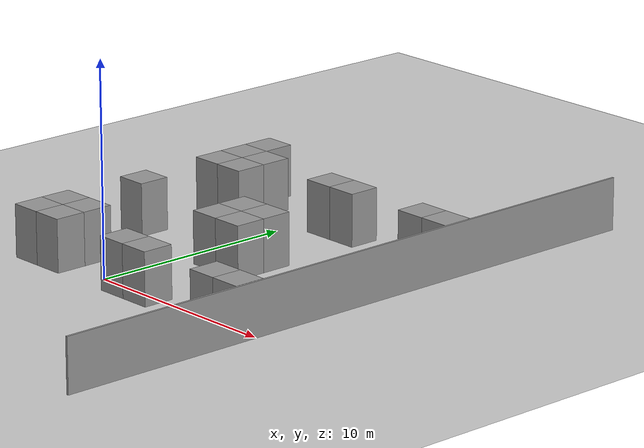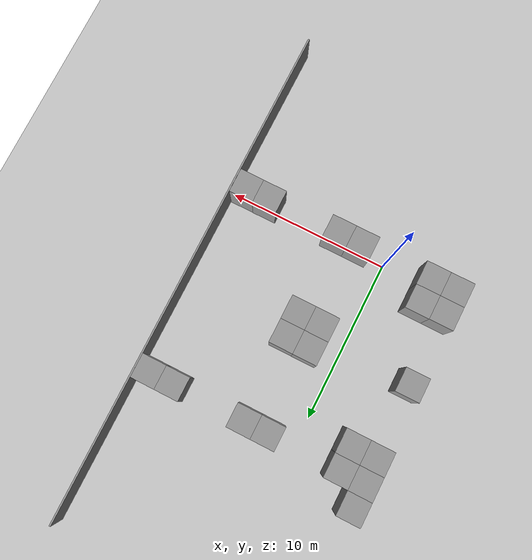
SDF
<sdf version="1.6">
 <world name="default">
  <model name="ground_plane">
   <static>1</static>
   <link name="link">
    <collision name="collision">
     <geometry><plane><normal>0 0 1</normal><size>100 100</size></plane></geometry>
     <surface><friction><ode><mu>100</mu><mu2>50</mu2></ode></friction></surface>
    </collision>
    <visual name="visual">
     <cast_shadows>0</cast_shadows>
     <geometry><plane><normal>0 0 1</normal><size>100 100</size></plane></geometry>
     <material>
      <script><uri>file://media/materials/scripts/gazebo.material</uri><name>Gazebo/Grey</name></script>
     </material>
    </visual>
   </link>
  </model>
  <model name="wall_1.5_1.5_11">
   <link name="Wall_2">
    <inertial>
     <mass>10</mass>
     <inertia><ixx>1</ixx><ixy>0</ixy><ixz>0</ixz><iyy>1</iyy><iyz>0</iyz><izz>1</izz></inertia>
    </inertial>
    <visual name="Wall_2_Visual">
     <pose>0 0 1.25 0 -0 0</pose>
     <geometry><box><size>1.5 1.5 2.5</size></box></geometry>
     <material>
      <script><uri>file://media/materials/scripts/gazebo.material</uri><name>Gazebo/Grey</name></script>
      <ambient>1 1 1 1</ambient>
      <diffuse>0.7 0.7 0.7 1</diffuse>
      <specular>0.01 0.01 0.01 1</specular>
      <emissive>0 0 0 1</emissive>
      <shader type="vertex"><normal_map>__default__</normal_map></shader>
     </material>
    </visual>
    <collision name="Wall_2_Collision">
     <pose>0 0 1.25 0 -0 0</pose>
     <geometry><box><size>1.5 1.5 2.5</size></box></geometry>
     <surface>
      <friction>
       <ode><mu>1</mu><mu2>1</mu2><fdir1>0 0 0</fdir1><slip1>0</slip1><slip2>0</slip2></ode>
       <torsional>
        <coefficient>1</coefficient>
        <patch_radius>0</patch_radius>
        <surface_radius>0</surface_radius>
        <use_patch_radius>1</use_patch_radius>
        <ode><slip>0</slip></ode>
       </torsional>
      </friction>
      <bounce><restitution_coefficient>0</restitution_coefficient><threshold>1e+06</threshold></bounce>
      <contact>
       <collide_without_contact>0</collide_without_contact>
       <collide_without_contact_bitmask>1</collide_without_contact_bitmask>
       <collide_bitmask>1</collide_bitmask>
       <ode>
        <soft_cfm>0</soft_cfm>
        <soft_erp>0.2</soft_erp>
        <kp>1e+13</kp>
        <kd>1</kd>
        <max_vel>0.01</max_vel>
        <min_depth>0</min_depth>
       </ode>
       <bullet>
        <split_impulse>1</split_impulse>
        <split_impulse_penetration_threshold>-0.01</split_impulse_penetration_threshold>
        <soft_cfm>0</soft_cfm>
        <soft_erp>0.2</soft_erp>
        <kp>1e+13</kp>
        <kd>1</kd>
       </bullet>
      </contact>
     </surface>
    </collision>
   </link>
   <static>1</static>
   <pose>9.24277 -0.255252 0 0 -0 0</pose>
  </model>
  <model name="wall_1.5_1.5_12">
   <link name="Wall_2">
    <inertial>
     <mass>10</mass>
     <inertia><ixx>1</ixx><ixy>0</ixy><ixz>0</ixz><iyy>1</iyy><iyz>0</iyz><izz>1</izz></inertia>
    </inertial>
    <visual name="Wall_2_Visual">
     <pose>0 0 1.25 0 -0 0</pose>
     <geometry><box><size>1.5 1.5 2.5</size></box></geometry>
     <material>
      <script><uri>file://media/materials/scripts/gazebo.material</uri><name>Gazebo/Grey</name></script>
      <ambient>1 1 1 1</ambient>
      <diffuse>0.7 0.7 0.7 1</diffuse>
      <specular>0.01 0.01 0.01 1</specular>
      <emissive>0 0 0 1</emissive>
      <shader type="vertex"><normal_map>__default__</normal_map></shader>
     </material>
    </visual>
    <collision name="Wall_2_Collision">
     <pose>0 0 1.25 0 -0 0</pose>
     <geometry><box><size>1.5 1.5 2.5</size></box></geometry>
     <surface>
      <friction>
       <ode><mu>1</mu><mu2>1</mu2><fdir1>0 0 0</fdir1><slip1>0</slip1><slip2>0</slip2></ode>
       <torsional>
        <coefficient>1</coefficient>
        <patch_radius>0</patch_radius>
        <surface_radius>0</surface_radius>
        <use_patch_radius>1</use_patch_radius>
        <ode><slip>0</slip></ode>
       </torsional>
      </friction>
      <bounce><restitution_coefficient>0</restitution_coefficient><threshold>1e+06</threshold></bounce>
      <contact>
       <collide_without_contact>0</collide_without_contact>
       <collide_without_contact_bitmask>1</collide_without_contact_bitmask>
       <collide_bitmask>1</collide_bitmask>
       <ode>
        <soft_cfm>0</soft_cfm>
        <soft_erp>0.2</soft_erp>
        <kp>1e+13</kp>
        <kd>1</kd>
        <max_vel>0.01</max_vel>
        <min_depth>0</min_depth>
       </ode>
       <bullet>
        <split_impulse>1</split_impulse>
        <split_impulse_penetration_threshold>-0.01</split_impulse_penetration_threshold>
        <soft_cfm>0</soft_cfm>
        <soft_erp>0.2</soft_erp>
        <kp>1e+13</kp>
        <kd>1</kd>
       </bullet>
      </contact>
     </surface>
    </collision>
   </link>
   <static>1</static>
   <pose>7.75582 -0.251223 0 0 -0 0</pose>
  </model>
  <model name="wall_1.5_1.5_13">
   <link name="Wall_2">
    <inertial>
     <mass>10</mass>
     <inertia><ixx>1</ixx><ixy>0</ixy><ixz>0</ixz><iyy>1</iyy><iyz>0</iyz><izz>1</izz></inertia>
    </inertial>
    <visual name="Wall_2_Visual">
     <pose>0 0 1.25 0 -0 0</pose>
     <geometry><box><size>1.5 1.5 2.5</size></box></geometry>
     <material>
      <script><uri>file://media/materials/scripts/gazebo.material</uri><name>Gazebo/Grey</name></script>
      <ambient>1 1 1 1</ambient>
      <diffuse>0.7 0.7 0.7 1</diffuse>
      <specular>0.01 0.01 0.01 1</specular>
      <emissive>0 0 0 1</emissive>
      <shader type="vertex"><normal_map>__default__</normal_map></shader>
     </material>
    </visual>
    <collision name="Wall_2_Collision">
     <pose>0 0 1.25 0 -0 0</pose>
     <geometry><box><size>1.5 1.5 2.5</size></box></geometry>
     <surface>
      <friction>
       <ode><mu>1</mu><mu2>1</mu2><fdir1>0 0 0</fdir1><slip1>0</slip1><slip2>0</slip2></ode>
       <torsional>
        <coefficient>1</coefficient>
        <patch_radius>0</patch_radius>
        <surface_radius>0</surface_radius>
        <use_patch_radius>1</use_patch_radius>
        <ode><slip>0</slip></ode>
       </torsional>
      </friction>
      <bounce><restitution_coefficient>0</restitution_coefficient><threshold>1e+06</threshold></bounce>
      <contact>
       <collide_without_contact>0</collide_without_contact>
       <collide_without_contact_bitmask>1</collide_without_contact_bitmask>
       <collide_bitmask>1</collide_bitmask>
       <ode>
        <soft_cfm>0</soft_cfm>
        <soft_erp>0.2</soft_erp>
        <kp>1e+13</kp>
        <kd>1</kd>
        <max_vel>0.01</max_vel>
        <min_depth>0</min_depth>
       </ode>
       <bullet>
        <split_impulse>1</split_impulse>
        <split_impulse_penetration_threshold>-0.01</split_impulse_penetration_threshold>
        <soft_cfm>0</soft_cfm>
        <soft_erp>0.2</soft_erp>
        <kp>1e+13</kp>
        <kd>1</kd>
       </bullet>
      </contact>
     </surface>
    </collision>
   </link>
   <static>1</static>
   <pose>9.25 11.75 0 0 -0 0</pose>
  </model>
  <model name="wall_1.5_1.5_16">
   <link name="Wall_2">
    <inertial>
     <mass>10</mass>
     <inertia><ixx>1</ixx><ixy>0</ixy><ixz>0</ixz><iyy>1</iyy><iyz>0</iyz><izz>1</izz></inertia>
    </inertial>
    <visual name="Wall_2_Visual">
     <pose>0 0 1.25 0 -0 0</pose>
     <geometry><box><size>1.5 1.5 2.5</size></box></geometry>
     <material>
      <script><uri>file://media/materials/scripts/gazebo.material</uri><name>Gazebo/Grey</name></script>
      <ambient>1 1 1 1</ambient>
      <diffuse>0.7 0.7 0.7 1</diffuse>
      <specular>0.01 0.01 0.01 1</specular>
      <emissive>0 0 0 1</emissive>
      <shader type="vertex"><normal_map>__default__</normal_map></shader>
     </material>
    </visual>
    <collision name="Wall_2_Collision">
     <pose>0 0 1.25 0 -0 0</pose>
     <geometry><box><size>1.5 1.5 2.5</size></box></geometry>
     <surface>
      <friction>
       <ode><mu>1</mu><mu2>1</mu2><fdir1>0 0 0</fdir1><slip1>0</slip1><slip2>0</slip2></ode>
       <torsional>
        <coefficient>1</coefficient>
        <patch_radius>0</patch_radius>
        <surface_radius>0</surface_radius>
        <use_patch_radius>1</use_patch_radius>
        <ode><slip>0</slip></ode>
       </torsional>
      </friction>
      <bounce><restitution_coefficient>0</restitution_coefficient><threshold>1e+06</threshold></bounce>
      <contact>
       <collide_without_contact>0</collide_without_contact>
       <collide_without_contact_bitmask>1</collide_without_contact_bitmask>
       <collide_bitmask>1</collide_bitmask>
       <ode>
        <soft_cfm>0</soft_cfm>
        <soft_erp>0.2</soft_erp>
        <kp>1e+13</kp>
        <kd>1</kd>
        <max_vel>0.01</max_vel>
        <min_depth>0</min_depth>
       </ode>
       <bullet>
        <split_impulse>1</split_impulse>
        <split_impulse_penetration_threshold>-0.01</split_impulse_penetration_threshold>
        <soft_cfm>0</soft_cfm>
        <soft_erp>0.2</soft_erp>
        <kp>1e+13</kp>
        <kd>1</kd>
       </bullet>
      </contact>
     </surface>
    </collision>
   </link>
   <static>1</static>
   <pose>7.75 11.75 0 0 -0 0</pose>
  </model>
  <model name="wall_1.5_1.5_23">
   <link name="Wall_2">
    <inertial>
     <mass>10</mass>
     <inertia><ixx>1</ixx><ixy>0</ixy><ixz>0</ixz><iyy>1</iyy><iyz>0</iyz><izz>1</izz></inertia>
    </inertial>
    <visual name="Wall_2_Visual">
     <pose>0 0 1.25 0 -0 0</pose>
     <geometry><box><size>1.5 1.5 2.5</size></box></geometry>
     <material>
      <script><uri>file://media/materials/scripts/gazebo.material</uri><name>Gazebo/Grey</name></script>
      <ambient>1 1 1 1</ambient>
      <diffuse>0.7 0.7 0.7 1</diffuse>
      <specular>0.01 0.01 0.01 1</specular>
      <emissive>0 0 0 1</emissive>
      <shader type="vertex"><normal_map>__default__</normal_map></shader>
     </material>
    </visual>
    <collision name="Wall_2_Collision">
     <pose>0 0 1.25 0 -0 0</pose>
     <geometry><box><size>1.5 1.5 2.5</size></box></geometry>
     <surface>
      <friction>
       <ode><mu>1</mu><mu2>1</mu2><fdir1>0 0 0</fdir1><slip1>0</slip1><slip2>0</slip2></ode>
       <torsional>
        <coefficient>1</coefficient>
        <patch_radius>0</patch_radius>
        <surface_radius>0</surface_radius>
        <use_patch_radius>1</use_patch_radius>
        <ode><slip>0</slip></ode>
       </torsional>
      </friction>
      <bounce><restitution_coefficient>0</restitution_coefficient><threshold>1e+06</threshold></bounce>
      <contact>
       <collide_without_contact>0</collide_without_contact>
       <collide_without_contact_bitmask>1</collide_without_contact_bitmask>
       <collide_bitmask>1</collide_bitmask>
       <ode>
        <soft_cfm>0</soft_cfm>
        <soft_erp>0.2</soft_erp>
        <kp>1e+13</kp>
        <kd>1</kd>
        <max_vel>0.01</max_vel>
        <min_depth>0</min_depth>
       </ode>
       <bullet>
        <split_impulse>1</split_impulse>
        <split_impulse_penetration_threshold>-0.01</split_impulse_penetration_threshold>
        <soft_cfm>0</soft_cfm>
        <soft_erp>0.2</soft_erp>
        <kp>1e+13</kp>
        <kd>1</kd>
       </bullet>
      </contact>
     </surface>
    </collision>
   </link>
   <static>1</static>
   <pose>3.25 5 0 0 -0 0</pose>
  </model>
  <model name="wall_1.5_1.5_24">
   <link name="Wall_2">
    <inertial>
     <mass>10</mass>
     <inertia><ixx>1</ixx><ixy>0</ixy><ixz>0</ixz><iyy>1</iyy><iyz>0</iyz><izz>1</izz></inertia>
    </inertial>
    <visual name="Wall_2_Visual">
     <pose>0 0 1.25 0 -0 0</pose>
     <geometry><box><size>1.5 1.5 2.5</size></box></geometry>
     <material>
      <script><uri>file://media/materials/scripts/gazebo.material</uri><name>Gazebo/Grey</name></script>
      <ambient>1 1 1 1</ambient>
      <diffuse>0.7 0.7 0.7 1</diffuse>
      <specular>0.01 0.01 0.01 1</specular>
      <emissive>0 0 0 1</emissive>
      <shader type="vertex"><normal_map>__default__</normal_map></shader>
     </material>
    </visual>
    <collision name="Wall_2_Collision">
     <pose>0 0 1.25 0 -0 0</pose>
     <geometry><box><size>1.5 1.5 2.5</size></box></geometry>
     <surface>
      <friction>
       <ode><mu>1</mu><mu2>1</mu2><fdir1>0 0 0</fdir1><slip1>0</slip1><slip2>0</slip2></ode>
       <torsional>
        <coefficient>1</coefficient>
        <patch_radius>0</patch_radius>
        <surface_radius>0</surface_radius>
        <use_patch_radius>1</use_patch_radius>
        <ode><slip>0</slip></ode>
       </torsional>
      </friction>
      <bounce><restitution_coefficient>0</restitution_coefficient><threshold>1e+06</threshold></bounce>
      <contact>
       <collide_without_contact>0</collide_without_contact>
       <collide_without_contact_bitmask>1</collide_without_contact_bitmask>
       <collide_bitmask>1</collide_bitmask>
       <ode>
        <soft_cfm>0</soft_cfm>
        <soft_erp>0.2</soft_erp>
        <kp>1e+13</kp>
        <kd>1</kd>
        <max_vel>0.01</max_vel>
        <min_depth>0</min_depth>
       </ode>
       <bullet>
        <split_impulse>1</split_impulse>
        <split_impulse_penetration_threshold>-0.01</split_impulse_penetration_threshold>
        <soft_cfm>0</soft_cfm>
        <soft_erp>0.2</soft_erp>
        <kp>1e+13</kp>
        <kd>1</kd>
       </bullet>
      </contact>
     </surface>
    </collision>
   </link>
   <static>1</static>
   <pose>3.25 11.75 0 0 -0 0</pose>
  </model>
  <model name="wall_1.5_1.5_29">
   <link name="Wall_2">
    <inertial>
     <mass>10</mass>
     <inertia><ixx>1</ixx><ixy>0</ixy><ixz>0</ixz><iyy>1</iyy><iyz>0</iyz><izz>1</izz></inertia>
    </inertial>
    <visual name="Wall_2_Visual">
     <pose>0 0 1.25 0 -0 0</pose>
     <geometry><box><size>1.5 1.5 2.5</size></box></geometry>
     <material>
      <script><uri>file://media/materials/scripts/gazebo.material</uri><name>Gazebo/Grey</name></script>
      <ambient>1 1 1 1</ambient>
      <diffuse>0.7 0.7 0.7 1</diffuse>
      <specular>0.01 0.01 0.01 1</specular>
      <emissive>0 0 0 1</emissive>
      <shader type="vertex"><normal_map>__default__</normal_map></shader>
     </material>
    </visual>
    <collision name="Wall_2_Collision">
     <pose>0 0 1.25 0 -0 0</pose>
     <geometry><box><size>1.5 1.5 2.5</size></box></geometry>
     <surface>
      <friction>
       <ode><mu>1</mu><mu2>1</mu2><fdir1>0 0 0</fdir1><slip1>0</slip1><slip2>0</slip2></ode>
       <torsional>
        <coefficient>1</coefficient>
        <patch_radius>0</patch_radius>
        <surface_radius>0</surface_radius>
        <use_patch_radius>1</use_patch_radius>
        <ode><slip>0</slip></ode>
       </torsional>
      </friction>
      <bounce><restitution_coefficient>0</restitution_coefficient><threshold>1e+06</threshold></bounce>
      <contact>
       <collide_without_contact>0</collide_without_contact>
       <collide_without_contact_bitmask>1</collide_without_contact_bitmask>
       <collide_bitmask>1</collide_bitmask>
       <ode>
        <soft_cfm>0</soft_cfm>
        <soft_erp>0.2</soft_erp>
        <kp>1e+13</kp>
        <kd>1</kd>
        <max_vel>0.01</max_vel>
        <min_depth>0</min_depth>
       </ode>
       <bullet>
        <split_impulse>1</split_impulse>
        <split_impulse_penetration_threshold>-0.01</split_impulse_penetration_threshold>
        <soft_cfm>0</soft_cfm>
        <soft_erp>0.2</soft_erp>
        <kp>1e+13</kp>
        <kd>1</kd>
       </bullet>
      </contact>
     </surface>
    </collision>
   </link>
   <static>1</static>
   <pose>1.75 -0.25 0 0 -0 0</pose>
  </model>
  <model name="wall_1.5_1.5_30">
   <link name="Wall_2">
    <inertial>
     <mass>10</mass>
     <inertia><ixx>1</ixx><ixy>0</ixy><ixz>0</ixz><iyy>1</iyy><iyz>0</iyz><izz>1</izz></inertia>
    </inertial>
    <visual name="Wall_2_Visual">
     <pose>0 0 1.25 0 -0 0</pose>
     <geometry><box><size>1.5 1.5 2.5</size></box></geometry>
     <material>
      <script><uri>file://media/materials/scripts/gazebo.material</uri><name>Gazebo/Grey</name></script>
      <ambient>1 1 1 1</ambient>
      <diffuse>0.7 0.7 0.7 1</diffuse>
      <specular>0.01 0.01 0.01 1</specular>
      <emissive>0 0 0 1</emissive>
      <shader type="vertex"><normal_map>__default__</normal_map></shader>
     </material>
    </visual>
    <collision name="Wall_2_Collision">
     <pose>0 0 1.25 0 -0 0</pose>
     <geometry><box><size>1.5 1.5 2.5</size></box></geometry>
     <surface>
      <friction>
       <ode><mu>1</mu><mu2>1</mu2><fdir1>0 0 0</fdir1><slip1>0</slip1><slip2>0</slip2></ode>
       <torsional>
        <coefficient>1</coefficient>
        <patch_radius>0</patch_radius>
        <surface_radius>0</surface_radius>
        <use_patch_radius>1</use_patch_radius>
        <ode><slip>0</slip></ode>
       </torsional>
      </friction>
      <bounce><restitution_coefficient>0</restitution_coefficient><threshold>1e+06</threshold></bounce>
      <contact>
       <collide_without_contact>0</collide_without_contact>
       <collide_without_contact_bitmask>1</collide_without_contact_bitmask>
       <collide_bitmask>1</collide_bitmask>
       <ode>
        <soft_cfm>0</soft_cfm>
        <soft_erp>0.2</soft_erp>
        <kp>1e+13</kp>
        <kd>1</kd>
        <max_vel>0.01</max_vel>
        <min_depth>0</min_depth>
       </ode>
       <bullet>
        <split_impulse>1</split_impulse>
        <split_impulse_penetration_threshold>-0.01</split_impulse_penetration_threshold>
        <soft_cfm>0</soft_cfm>
        <soft_erp>0.2</soft_erp>
        <kp>1e+13</kp>
        <kd>1</kd>
       </bullet>
      </contact>
     </surface>
    </collision>
   </link>
   <static>1</static>
   <pose>3.25 -0.25 0 0 -0 0</pose>
  </model>
  <model name="wall_1.5_1.5_31">
   <link name="Wall_2">
    <inertial>
     <mass>10</mass>
     <inertia><ixx>1</ixx><ixy>0</ixy><ixz>0</ixz><iyy>1</iyy><iyz>0</iyz><izz>1</izz></inertia>
    </inertial>
    <visual name="Wall_2_Visual">
     <pose>0 0 1.25 0 -0 0</pose>
     <geometry><box><size>1.5 1.5 2.5</size></box></geometry>
     <material>
      <script><uri>file://media/materials/scripts/gazebo.material</uri><name>Gazebo/Grey</name></script>
      <ambient>1 1 1 1</ambient>
      <diffuse>0.7 0.7 0.7 1</diffuse>
      <specular>0.01 0.01 0.01 1</specular>
      <emissive>0 0 0 1</emissive>
      <shader type="vertex"><normal_map>__default__</normal_map></shader>
     </material>
    </visual>
    <collision name="Wall_2_Collision">
     <pose>0 0 1.25 0 -0 0</pose>
     <geometry><box><size>1.5 1.5 2.5</size></box></geometry>
     <surface>
      <friction>
       <ode><mu>1</mu><mu2>1</mu2><fdir1>0 0 0</fdir1><slip1>0</slip1><slip2>0</slip2></ode>
       <torsional>
        <coefficient>1</coefficient>
        <patch_radius>0</patch_radius>
        <surface_radius>0</surface_radius>
        <use_patch_radius>1</use_patch_radius>
        <ode><slip>0</slip></ode>
       </torsional>
      </friction>
      <bounce><restitution_coefficient>0</restitution_coefficient><threshold>1e+06</threshold></bounce>
      <contact>
       <collide_without_contact>0</collide_without_contact>
       <collide_without_contact_bitmask>1</collide_without_contact_bitmask>
       <collide_bitmask>1</collide_bitmask>
       <ode>
        <soft_cfm>0</soft_cfm>
        <soft_erp>0.2</soft_erp>
        <kp>1e+13</kp>
        <kd>1</kd>
        <max_vel>0.01</max_vel>
        <min_depth>0</min_depth>
       </ode>
       <bullet>
        <split_impulse>1</split_impulse>
        <split_impulse_penetration_threshold>-0.01</split_impulse_penetration_threshold>
        <soft_cfm>0</soft_cfm>
        <soft_erp>0.2</soft_erp>
        <kp>1e+13</kp>
        <kd>1</kd>
       </bullet>
      </contact>
     </surface>
    </collision>
   </link>
   <static>1</static>
   <pose>3.25 6.5 0 0 -0 0</pose>
  </model>
  <model name="wall_1.5_1.5_32">
   <link name="Wall_2">
    <inertial>
     <mass>10</mass>
     <inertia><ixx>1</ixx><ixy>0</ixy><ixz>0</ixz><iyy>1</iyy><iyz>0</iyz><izz>1</izz></inertia>
    </inertial>
    <visual name="Wall_2_Visual">
     <pose>0 0 1.25 0 -0 0</pose>
     <geometry><box><size>1.5 1.5 2.5</size></box></geometry>
     <material>
      <script><uri>file://media/materials/scripts/gazebo.material</uri><name>Gazebo/Grey</name></script>
      <ambient>1 1 1 1</ambient>
      <diffuse>0.7 0.7 0.7 1</diffuse>
      <specular>0.01 0.01 0.01 1</specular>
      <emissive>0 0 0 1</emissive>
      <shader type="vertex"><normal_map>__default__</normal_map></shader>
     </material>
    </visual>
    <collision name="Wall_2_Collision">
     <pose>0 0 1.25 0 -0 0</pose>
     <geometry><box><size>1.5 1.5 2.5</size></box></geometry>
     <surface>
      <friction>
       <ode><mu>1</mu><mu2>1</mu2><fdir1>0 0 0</fdir1><slip1>0</slip1><slip2>0</slip2></ode>
       <torsional>
        <coefficient>1</coefficient>
        <patch_radius>0</patch_radius>
        <surface_radius>0</surface_radius>
        <use_patch_radius>1</use_patch_radius>
        <ode><slip>0</slip></ode>
       </torsional>
      </friction>
      <bounce><restitution_coefficient>0</restitution_coefficient><threshold>1e+06</threshold></bounce>
      <contact>
       <collide_without_contact>0</collide_without_contact>
       <collide_without_contact_bitmask>1</collide_without_contact_bitmask>
       <collide_bitmask>1</collide_bitmask>
       <ode>
        <soft_cfm>0</soft_cfm>
        <soft_erp>0.2</soft_erp>
        <kp>1e+13</kp>
        <kd>1</kd>
        <max_vel>0.01</max_vel>
        <min_depth>0</min_depth>
       </ode>
       <bullet>
        <split_impulse>1</split_impulse>
        <split_impulse_penetration_threshold>-0.01</split_impulse_penetration_threshold>
        <soft_cfm>0</soft_cfm>
        <soft_erp>0.2</soft_erp>
        <kp>1e+13</kp>
        <kd>1</kd>
       </bullet>
      </contact>
     </surface>
    </collision>
   </link>
   <static>1</static>
   <pose>1.75 5 0 0 -0 0</pose>
  </model>
  <model name="wall_1.5_1.5_33">
   <link name="Wall_2">
    <inertial>
     <mass>10</mass>
     <inertia><ixx>1</ixx><ixy>0</ixy><ixz>0</ixz><iyy>1</iyy><iyz>0</iyz><izz>1</izz></inertia>
    </inertial>
    <visual name="Wall_2_Visual">
     <pose>0 0 1.25 0 -0 0</pose>
     <geometry><box><size>1.5 1.5 2.5</size></box></geometry>
     <material>
      <script><uri>file://media/materials/scripts/gazebo.material</uri><name>Gazebo/Grey</name></script>
      <ambient>1 1 1 1</ambient>
      <diffuse>0.7 0.7 0.7 1</diffuse>
      <specular>0.01 0.01 0.01 1</specular>
      <emissive>0 0 0 1</emissive>
      <shader type="vertex"><normal_map>__default__</normal_map></shader>
     </material>
    </visual>
    <collision name="Wall_2_Collision">
     <pose>0 0 1.25 0 -0 0</pose>
     <geometry><box><size>1.5 1.5 2.5</size></box></geometry>
     <surface>
      <friction>
       <ode><mu>1</mu><mu2>1</mu2><fdir1>0 0 0</fdir1><slip1>0</slip1><slip2>0</slip2></ode>
       <torsional>
        <coefficient>1</coefficient>
        <patch_radius>0</patch_radius>
        <surface_radius>0</surface_radius>
        <use_patch_radius>1</use_patch_radius>
        <ode><slip>0</slip></ode>
       </torsional>
      </friction>
      <bounce><restitution_coefficient>0</restitution_coefficient><threshold>1e+06</threshold></bounce>
      <contact>
       <collide_without_contact>0</collide_without_contact>
       <collide_without_contact_bitmask>1</collide_without_contact_bitmask>
       <collide_bitmask>1</collide_bitmask>
       <ode>
        <soft_cfm>0</soft_cfm>
        <soft_erp>0.2</soft_erp>
        <kp>1e+13</kp>
        <kd>1</kd>
        <max_vel>0.01</max_vel>
        <min_depth>0</min_depth>
       </ode>
       <bullet>
        <split_impulse>1</split_impulse>
        <split_impulse_penetration_threshold>-0.01</split_impulse_penetration_threshold>
        <soft_cfm>0</soft_cfm>
        <soft_erp>0.2</soft_erp>
        <kp>1e+13</kp>
        <kd>1</kd>
       </bullet>
      </contact>
     </surface>
    </collision>
   </link>
   <static>1</static>
   <pose>1.75 6.5 0 0 -0 0</pose>
  </model>
  <model name="wall_1.5_1.5_34">
   <link name="Wall_2">
    <inertial>
     <mass>10</mass>
     <inertia><ixx>1</ixx><ixy>0</ixy><ixz>0</ixz><iyy>1</iyy><iyz>0</iyz><izz>1</izz></inertia>
    </inertial>
    <visual name="Wall_2_Visual">
     <pose>0 0 1.25 0 -0 0</pose>
     <geometry><box><size>1.5 1.5 2.5</size></box></geometry>
     <material>
      <script><uri>file://media/materials/scripts/gazebo.material</uri><name>Gazebo/Grey</name></script>
      <ambient>1 1 1 1</ambient>
      <diffuse>0.7 0.7 0.7 1</diffuse>
      <specular>0.01 0.01 0.01 1</specular>
      <emissive>0 0 0 1</emissive>
      <shader type="vertex"><normal_map>__default__</normal_map></shader>
     </material>
    </visual>
    <collision name="Wall_2_Collision">
     <pose>0 0 1.25 0 -0 0</pose>
     <geometry><box><size>1.5 1.5 2.5</size></box></geometry>
     <surface>
      <friction>
       <ode><mu>1</mu><mu2>1</mu2><fdir1>0 0 0</fdir1><slip1>0</slip1><slip2>0</slip2></ode>
       <torsional>
        <coefficient>1</coefficient>
        <patch_radius>0</patch_radius>
        <surface_radius>0</surface_radius>
        <use_patch_radius>1</use_patch_radius>
        <ode><slip>0</slip></ode>
       </torsional>
      </friction>
      <bounce><restitution_coefficient>0</restitution_coefficient><threshold>1e+06</threshold></bounce>
      <contact>
       <collide_without_contact>0</collide_without_contact>
       <collide_without_contact_bitmask>1</collide_without_contact_bitmask>
       <collide_bitmask>1</collide_bitmask>
       <ode>
        <soft_cfm>0</soft_cfm>
        <soft_erp>0.2</soft_erp>
        <kp>1e+13</kp>
        <kd>1</kd>
        <max_vel>0.01</max_vel>
        <min_depth>0</min_depth>
       </ode>
       <bullet>
        <split_impulse>1</split_impulse>
        <split_impulse_penetration_threshold>-0.01</split_impulse_penetration_threshold>
        <soft_cfm>0</soft_cfm>
        <soft_erp>0.2</soft_erp>
        <kp>1e+13</kp>
        <kd>1</kd>
       </bullet>
      </contact>
     </surface>
    </collision>
   </link>
   <static>1</static>
   <pose>1.75 11.75 0 0 -0 0</pose>
  </model>
  <model name="wall_1.5_1.5_59">
   <link name="Wall_2">
    <inertial>
     <mass>10</mass>
     <inertia><ixx>1</ixx><ixy>0</ixy><ixz>0</ixz><iyy>1</iyy><iyz>0</iyz><izz>1</izz></inertia>
    </inertial>
    <visual name="Wall_2_Visual">
     <pose>0 0 1.25 0 -0 0</pose>
     <geometry><box><size>1.5 1.5 2.5</size></box></geometry>
     <material>
      <script><uri>file://media/materials/scripts/gazebo.material</uri><name>Gazebo/Grey</name></script>
      <ambient>1 1 1 1</ambient>
      <diffuse>0.7 0.7 0.7 1</diffuse>
      <specular>0.01 0.01 0.01 1</specular>
      <emissive>0 0 0 1</emissive>
      <shader type="vertex"><normal_map>__default__</normal_map></shader>
     </material>
    </visual>
    <collision name="Wall_2_Collision">
     <pose>0 0 1.25 0 -0 0</pose>
     <geometry><box><size>1.5 1.5 2.5</size></box></geometry>
     <surface>
      <friction>
       <ode><mu>1</mu><mu2>1</mu2><fdir1>0 0 0</fdir1><slip1>0</slip1><slip2>0</slip2></ode>
       <torsional>
        <coefficient>1</coefficient>
        <patch_radius>0</patch_radius>
        <surface_radius>0</surface_radius>
        <use_patch_radius>1</use_patch_radius>
        <ode><slip>0</slip></ode>
       </torsional>
      </friction>
      <bounce><restitution_coefficient>0</restitution_coefficient><threshold>1e+06</threshold></bounce>
      <contact>
       <collide_without_contact>0</collide_without_contact>
       <collide_without_contact_bitmask>1</collide_without_contact_bitmask>
       <collide_bitmask>1</collide_bitmask>
       <ode>
        <soft_cfm>0</soft_cfm>
        <soft_erp>0.2</soft_erp>
        <kp>1e+13</kp>
        <kd>1</kd>
        <max_vel>0.01</max_vel>
        <min_depth>0</min_depth>
       </ode>
       <bullet>
        <split_impulse>1</split_impulse>
        <split_impulse_penetration_threshold>-0.01</split_impulse_penetration_threshold>
        <soft_cfm>0</soft_cfm>
        <soft_erp>0.2</soft_erp>
        <kp>1e+13</kp>
        <kd>1</kd>
       </bullet>
      </contact>
     </surface>
    </collision>
   </link>
   <static>1</static>
   <pose>-2.75 -0.25 0 0 -0 0</pose>
  </model>
  <model name="wall_1.5_1.5_60">
   <link name="Wall_2">
    <inertial>
     <mass>10</mass>
     <inertia><ixx>1</ixx><ixy>0</ixy><ixz>0</ixz><iyy>1</iyy><iyz>0</iyz><izz>1</izz></inertia>
    </inertial>
    <visual name="Wall_2_Visual">
     <pose>0 0 1.25 0 -0 0</pose>
     <geometry><box><size>1.5 1.5 2.5</size></box></geometry>
     <material>
      <script><uri>file://media/materials/scripts/gazebo.material</uri><name>Gazebo/Grey</name></script>
      <ambient>1 1 1 1</ambient>
      <diffuse>0.7 0.7 0.7 1</diffuse>
      <specular>0.01 0.01 0.01 1</specular>
      <emissive>0 0 0 1</emissive>
      <shader type="vertex"><normal_map>__default__</normal_map></shader>
     </material>
    </visual>
    <collision name="Wall_2_Collision">
     <pose>0 0 1.25 0 -0 0</pose>
     <geometry><box><size>1.5 1.5 2.5</size></box></geometry>
     <surface>
      <friction>
       <ode><mu>1</mu><mu2>1</mu2><fdir1>0 0 0</fdir1><slip1>0</slip1><slip2>0</slip2></ode>
       <torsional>
        <coefficient>1</coefficient>
        <patch_radius>0</patch_radius>
        <surface_radius>0</surface_radius>
        <use_patch_radius>1</use_patch_radius>
        <ode><slip>0</slip></ode>
       </torsional>
      </friction>
      <bounce><restitution_coefficient>0</restitution_coefficient><threshold>1e+06</threshold></bounce>
      <contact>
       <collide_without_contact>0</collide_without_contact>
       <collide_without_contact_bitmask>1</collide_without_contact_bitmask>
       <collide_bitmask>1</collide_bitmask>
       <ode>
        <soft_cfm>0</soft_cfm>
        <soft_erp>0.2</soft_erp>
        <kp>1e+13</kp>
        <kd>1</kd>
        <max_vel>0.01</max_vel>
        <min_depth>0</min_depth>
       </ode>
       <bullet>
        <split_impulse>1</split_impulse>
        <split_impulse_penetration_threshold>-0.01</split_impulse_penetration_threshold>
        <soft_cfm>0</soft_cfm>
        <soft_erp>0.2</soft_erp>
        <kp>1e+13</kp>
        <kd>1</kd>
       </bullet>
      </contact>
     </surface>
    </collision>
   </link>
   <static>1</static>
   <pose>-2.75 1.25 0 0 -0 0</pose>
  </model>
  <model name="wall_1.5_1.5_64">
   <link name="Wall_2">
    <inertial>
     <mass>10</mass>
     <inertia><ixx>1</ixx><ixy>0</ixy><ixz>0</ixz><iyy>1</iyy><iyz>0</iyz><izz>1</izz></inertia>
    </inertial>
    <visual name="Wall_2_Visual">
     <pose>0 0 1.25 0 -0 0</pose>
     <geometry><box><size>1.5 1.5 2.5</size></box></geometry>
     <material>
      <script><uri>file://media/materials/scripts/gazebo.material</uri><name>Gazebo/Grey</name></script>
      <ambient>1 1 1 1</ambient>
      <diffuse>0.7 0.7 0.7 1</diffuse>
      <specular>0.01 0.01 0.01 1</specular>
      <emissive>0 0 0 1</emissive>
      <shader type="vertex"><normal_map>__default__</normal_map></shader>
     </material>
    </visual>
    <collision name="Wall_2_Collision">
     <pose>0 0 1.25 0 -0 0</pose>
     <geometry><box><size>1.5 1.5 2.5</size></box></geometry>
     <surface>
      <friction>
       <ode><mu>1</mu><mu2>1</mu2><fdir1>0 0 0</fdir1><slip1>0</slip1><slip2>0</slip2></ode>
       <torsional>
        <coefficient>1</coefficient>
        <patch_radius>0</patch_radius>
        <surface_radius>0</surface_radius>
        <use_patch_radius>1</use_patch_radius>
        <ode><slip>0</slip></ode>
       </torsional>
      </friction>
      <bounce><restitution_coefficient>0</restitution_coefficient><threshold>1e+06</threshold></bounce>
      <contact>
       <collide_without_contact>0</collide_without_contact>
       <collide_without_contact_bitmask>1</collide_without_contact_bitmask>
       <collide_bitmask>1</collide_bitmask>
       <ode>
        <soft_cfm>0</soft_cfm>
        <soft_erp>0.2</soft_erp>
        <kp>1e+13</kp>
        <kd>1</kd>
        <max_vel>0.01</max_vel>
        <min_depth>0</min_depth>
       </ode>
       <bullet>
        <split_impulse>1</split_impulse>
        <split_impulse_penetration_threshold>-0.01</split_impulse_penetration_threshold>
        <soft_cfm>0</soft_cfm>
        <soft_erp>0.2</soft_erp>
        <kp>1e+13</kp>
        <kd>1</kd>
       </bullet>
      </contact>
     </surface>
    </collision>
   </link>
   <static>1</static>
   <pose>-4.25 1.25 0 0 -0 0</pose>
  </model>
  <model name="wall_1.5_1.5_65">
   <link name="Wall_2">
    <inertial>
     <mass>10</mass>
     <inertia><ixx>1</ixx><ixy>0</ixy><ixz>0</ixz><iyy>1</iyy><iyz>0</iyz><izz>1</izz></inertia>
    </inertial>
    <visual name="Wall_2_Visual">
     <pose>0 0 1.25 0 -0 0</pose>
     <geometry><box><size>1.5 1.5 2.5</size></box></geometry>
     <material>
      <script><uri>file://media/materials/scripts/gazebo.material</uri><name>Gazebo/Grey</name></script>
      <ambient>1 1 1 1</ambient>
      <diffuse>0.7 0.7 0.7 1</diffuse>
      <specular>0.01 0.01 0.01 1</specular>
      <emissive>0 0 0 1</emissive>
      <shader type="vertex"><normal_map>__default__</normal_map></shader>
     </material>
    </visual>
    <collision name="Wall_2_Collision">
     <pose>0 0 1.25 0 -0 0</pose>
     <geometry><box><size>1.5 1.5 2.5</size></box></geometry>
     <surface>
      <friction>
       <ode><mu>1</mu><mu2>1</mu2><fdir1>0 0 0</fdir1><slip1>0</slip1><slip2>0</slip2></ode>
       <torsional>
        <coefficient>1</coefficient>
        <patch_radius>0</patch_radius>
        <surface_radius>0</surface_radius>
        <use_patch_radius>1</use_patch_radius>
        <ode><slip>0</slip></ode>
       </torsional>
      </friction>
      <bounce><restitution_coefficient>0</restitution_coefficient><threshold>1e+06</threshold></bounce>
      <contact>
       <collide_without_contact>0</collide_without_contact>
       <collide_without_contact_bitmask>1</collide_without_contact_bitmask>
       <collide_bitmask>1</collide_bitmask>
       <ode>
        <soft_cfm>0</soft_cfm>
        <soft_erp>0.2</soft_erp>
        <kp>1e+13</kp>
        <kd>1</kd>
        <max_vel>0.01</max_vel>
        <min_depth>0</min_depth>
       </ode>
       <bullet>
        <split_impulse>1</split_impulse>
        <split_impulse_penetration_threshold>-0.01</split_impulse_penetration_threshold>
        <soft_cfm>0</soft_cfm>
        <soft_erp>0.2</soft_erp>
        <kp>1e+13</kp>
        <kd>1</kd>
       </bullet>
      </contact>
     </surface>
    </collision>
   </link>
   <static>1</static>
   <pose>-4.25 -0.25 0 0 -0 0</pose>
  </model>
  <model name="wall_1.5_1.5_68">
   <link name="Wall_2">
    <inertial>
     <mass>10</mass>
     <inertia><ixx>1</ixx><ixy>0</ixy><ixz>0</ixz><iyy>1</iyy><iyz>0</iyz><izz>1</izz></inertia>
    </inertial>
    <visual name="Wall_2_Visual">
     <pose>0 0 1.25 0 -0 0</pose>
     <geometry><box><size>1.5 1.5 2.5</size></box></geometry>
     <material>
      <script><uri>file://media/materials/scripts/gazebo.material</uri><name>Gazebo/Grey</name></script>
      <ambient>1 1 1 1</ambient>
      <diffuse>0.7 0.7 0.7 1</diffuse>
      <specular>0.01 0.01 0.01 1</specular>
      <emissive>0 0 0 1</emissive>
      <shader type="vertex"><normal_map>__default__</normal_map></shader>
     </material>
    </visual>
    <collision name="Wall_2_Collision">
     <pose>0 0 1.25 0 -0 0</pose>
     <geometry><box><size>1.5 1.5 2.5</size></box></geometry>
     <surface>
      <friction>
       <ode><mu>1</mu><mu2>1</mu2><fdir1>0 0 0</fdir1><slip1>0</slip1><slip2>0</slip2></ode>
       <torsional>
        <coefficient>1</coefficient>
        <patch_radius>0</patch_radius>
        <surface_radius>0</surface_radius>
        <use_patch_radius>1</use_patch_radius>
        <ode><slip>0</slip></ode>
       </torsional>
      </friction>
      <bounce><restitution_coefficient>0</restitution_coefficient><threshold>1e+06</threshold></bounce>
      <contact>
       <collide_without_contact>0</collide_without_contact>
       <collide_without_contact_bitmask>1</collide_without_contact_bitmask>
       <collide_bitmask>1</collide_bitmask>
       <ode>
        <soft_cfm>0</soft_cfm>
        <soft_erp>0.2</soft_erp>
        <kp>1e+13</kp>
        <kd>1</kd>
        <max_vel>0.01</max_vel>
        <min_depth>0</min_depth>
       </ode>
       <bullet>
        <split_impulse>1</split_impulse>
        <split_impulse_penetration_threshold>-0.01</split_impulse_penetration_threshold>
        <soft_cfm>0</soft_cfm>
        <soft_erp>0.2</soft_erp>
        <kp>1e+13</kp>
        <kd>1</kd>
       </bullet>
      </contact>
     </surface>
    </collision>
   </link>
   <static>1</static>
   <pose>-2.75 10.25 0 0 -0 0</pose>
  </model>
  <model name="wall_1.5_1.5_69">
   <link name="Wall_2">
    <inertial>
     <mass>10</mass>
     <inertia><ixx>1</ixx><ixy>0</ixy><ixz>0</ixz><iyy>1</iyy><iyz>0</iyz><izz>1</izz></inertia>
    </inertial>
    <visual name="Wall_2_Visual">
     <pose>0 0 1.25 0 -0 0</pose>
     <geometry><box><size>1.5 1.5 2.5</size></box></geometry>
     <material>
      <script><uri>file://media/materials/scripts/gazebo.material</uri><name>Gazebo/Grey</name></script>
      <ambient>1 1 1 1</ambient>
      <diffuse>0.7 0.7 0.7 1</diffuse>
      <specular>0.01 0.01 0.01 1</specular>
      <emissive>0 0 0 1</emissive>
      <shader type="vertex"><normal_map>__default__</normal_map></shader>
     </material>
    </visual>
    <collision name="Wall_2_Collision">
     <pose>0 0 1.25 0 -0 0</pose>
     <geometry><box><size>1.5 1.5 2.5</size></box></geometry>
     <surface>
      <friction>
       <ode><mu>1</mu><mu2>1</mu2><fdir1>0 0 0</fdir1><slip1>0</slip1><slip2>0</slip2></ode>
       <torsional>
        <coefficient>1</coefficient>
        <patch_radius>0</patch_radius>
        <surface_radius>0</surface_radius>
        <use_patch_radius>1</use_patch_radius>
        <ode><slip>0</slip></ode>
       </torsional>
      </friction>
      <bounce><restitution_coefficient>0</restitution_coefficient><threshold>1e+06</threshold></bounce>
      <contact>
       <collide_without_contact>0</collide_without_contact>
       <collide_without_contact_bitmask>1</collide_without_contact_bitmask>
       <collide_bitmask>1</collide_bitmask>
       <ode>
        <soft_cfm>0</soft_cfm>
        <soft_erp>0.2</soft_erp>
        <kp>1e+13</kp>
        <kd>1</kd>
        <max_vel>0.01</max_vel>
        <min_depth>0</min_depth>
       </ode>
       <bullet>
        <split_impulse>1</split_impulse>
        <split_impulse_penetration_threshold>-0.01</split_impulse_penetration_threshold>
        <soft_cfm>0</soft_cfm>
        <soft_erp>0.2</soft_erp>
        <kp>1e+13</kp>
        <kd>1</kd>
       </bullet>
      </contact>
     </surface>
    </collision>
   </link>
   <static>1</static>
   <pose>-2.75 11.75 0 0 -0 0</pose>
  </model>
  <model name="wall_1.5_1.5_82">
   <link name="Wall_2">
    <inertial>
     <mass>10</mass>
     <inertia><ixx>1</ixx><ixy>0</ixy><ixz>0</ixz><iyy>1</iyy><iyz>0</iyz><izz>1</izz></inertia>
    </inertial>
    <visual name="Wall_2_Visual">
     <pose>0 0 1.25 0 -0 0</pose>
     <geometry><box><size>1.5 1.5 2.5</size></box></geometry>
     <material>
      <script><uri>file://media/materials/scripts/gazebo.material</uri><name>Gazebo/Grey</name></script>
      <ambient>1 1 1 1</ambient>
      <diffuse>0.7 0.7 0.7 1</diffuse>
      <specular>0.01 0.01 0.01 1</specular>
      <emissive>0 0 0 1</emissive>
      <shader type="vertex"><normal_map>__default__</normal_map></shader>
     </material>
    </visual>
    <collision name="Wall_2_Collision">
     <pose>0 0 1.25 0 -0 0</pose>
     <geometry><box><size>1.5 1.5 2.5</size></box></geometry>
     <surface>
      <friction>
       <ode><mu>1</mu><mu2>1</mu2><fdir1>0 0 0</fdir1><slip1>0</slip1><slip2>0</slip2></ode>
       <torsional>
        <coefficient>1</coefficient>
        <patch_radius>0</patch_radius>
        <surface_radius>0</surface_radius>
        <use_patch_radius>1</use_patch_radius>
        <ode><slip>0</slip></ode>
       </torsional>
      </friction>
      <bounce><restitution_coefficient>0</restitution_coefficient><threshold>1e+06</threshold></bounce>
      <contact>
       <collide_without_contact>0</collide_without_contact>
       <collide_without_contact_bitmask>1</collide_without_contact_bitmask>
       <collide_bitmask>1</collide_bitmask>
       <ode>
        <soft_cfm>0</soft_cfm>
        <soft_erp>0.2</soft_erp>
        <kp>1e+13</kp>
        <kd>1</kd>
        <max_vel>0.01</max_vel>
        <min_depth>0</min_depth>
       </ode>
       <bullet>
        <split_impulse>1</split_impulse>
        <split_impulse_penetration_threshold>-0.01</split_impulse_penetration_threshold>
        <soft_cfm>0</soft_cfm>
        <soft_erp>0.2</soft_erp>
        <kp>1e+13</kp>
        <kd>1</kd>
       </bullet>
      </contact>
     </surface>
    </collision>
   </link>
   <static>1</static>
   <pose>-4.25 10.25 0 0 -0 0</pose>
  </model>
  <model name="wall_1.5_1.5_83">
   <link name="Wall_2">
    <inertial>
     <mass>10</mass>
     <inertia><ixx>1</ixx><ixy>0</ixy><ixz>0</ixz><iyy>1</iyy><iyz>0</iyz><izz>1</izz></inertia>
    </inertial>
    <visual name="Wall_2_Visual">
     <pose>0 0 1.25 0 -0 0</pose>
     <geometry><box><size>1.5 1.5 2.5</size></box></geometry>
     <material>
      <script><uri>file://media/materials/scripts/gazebo.material</uri><name>Gazebo/Grey</name></script>
      <ambient>1 1 1 1</ambient>
      <diffuse>0.7 0.7 0.7 1</diffuse>
      <specular>0.01 0.01 0.01 1</specular>
      <emissive>0 0 0 1</emissive>
      <shader type="vertex"><normal_map>__default__</normal_map></shader>
     </material>
    </visual>
    <collision name="Wall_2_Collision">
     <pose>0 0 1.25 0 -0 0</pose>
     <geometry><box><size>1.5 1.5 2.5</size></box></geometry>
     <surface>
      <friction>
       <ode><mu>1</mu><mu2>1</mu2><fdir1>0 0 0</fdir1><slip1>0</slip1><slip2>0</slip2></ode>
       <torsional>
        <coefficient>1</coefficient>
        <patch_radius>0</patch_radius>
        <surface_radius>0</surface_radius>
        <use_patch_radius>1</use_patch_radius>
        <ode><slip>0</slip></ode>
       </torsional>
      </friction>
      <bounce><restitution_coefficient>0</restitution_coefficient><threshold>1e+06</threshold></bounce>
      <contact>
       <collide_without_contact>0</collide_without_contact>
       <collide_without_contact_bitmask>1</collide_without_contact_bitmask>
       <collide_bitmask>1</collide_bitmask>
       <ode>
        <soft_cfm>0</soft_cfm>
        <soft_erp>0.2</soft_erp>
        <kp>1e+13</kp>
        <kd>1</kd>
        <max_vel>0.01</max_vel>
        <min_depth>0</min_depth>
       </ode>
       <bullet>
        <split_impulse>1</split_impulse>
        <split_impulse_penetration_threshold>-0.01</split_impulse_penetration_threshold>
        <soft_cfm>0</soft_cfm>
        <soft_erp>0.2</soft_erp>
        <kp>1e+13</kp>
        <kd>1</kd>
       </bullet>
      </contact>
     </surface>
    </collision>
   </link>
   <static>1</static>
   <pose>-4.25 11.75 0 0 -0 0</pose>
  </model>
  <model name="wall_1.5_1.5_84">
   <link name="Wall_2">
    <inertial>
     <mass>10</mass>
     <inertia><ixx>1</ixx><ixy>0</ixy><ixz>0</ixz><iyy>1</iyy><iyz>0</iyz><izz>1</izz></inertia>
    </inertial>
    <visual name="Wall_2_Visual">
     <pose>0 0 1.25 0 -0 0</pose>
     <geometry><box><size>1.5 1.5 2.5</size></box></geometry>
     <material>
      <script><uri>file://media/materials/scripts/gazebo.material</uri><name>Gazebo/Grey</name></script>
      <ambient>1 1 1 1</ambient>
      <diffuse>0.7 0.7 0.7 1</diffuse>
      <specular>0.01 0.01 0.01 1</specular>
      <emissive>0 0 0 1</emissive>
      <shader type="vertex"><normal_map>__default__</normal_map></shader>
     </material>
    </visual>
    <collision name="Wall_2_Collision">
     <pose>0 0 1.25 0 -0 0</pose>
     <geometry><box><size>1.5 1.5 2.5</size></box></geometry>
     <surface>
      <friction>
       <ode><mu>1</mu><mu2>1</mu2><fdir1>0 0 0</fdir1><slip1>0</slip1><slip2>0</slip2></ode>
       <torsional>
        <coefficient>1</coefficient>
        <patch_radius>0</patch_radius>
        <surface_radius>0</surface_radius>
        <use_patch_radius>1</use_patch_radius>
        <ode><slip>0</slip></ode>
       </torsional>
      </friction>
      <bounce><restitution_coefficient>0</restitution_coefficient><threshold>1e+06</threshold></bounce>
      <contact>
       <collide_without_contact>0</collide_without_contact>
       <collide_without_contact_bitmask>1</collide_without_contact_bitmask>
       <collide_bitmask>1</collide_bitmask>
       <ode>
        <soft_cfm>0</soft_cfm>
        <soft_erp>0.2</soft_erp>
        <kp>1e+13</kp>
        <kd>1</kd>
        <max_vel>0.01</max_vel>
        <min_depth>0</min_depth>
       </ode>
       <bullet>
        <split_impulse>1</split_impulse>
        <split_impulse_penetration_threshold>-0.01</split_impulse_penetration_threshold>
        <soft_cfm>0</soft_cfm>
        <soft_erp>0.2</soft_erp>
        <kp>1e+13</kp>
        <kd>1</kd>
       </bullet>
      </contact>
     </surface>
    </collision>
   </link>
   <static>1</static>
   <pose>-4.25 13.25 0 0 -0 0</pose>
  </model>
  <model name="wall_1.5_1.5_102">
   <link name="Wall_2">
    <inertial>
     <mass>10</mass>
     <inertia><ixx>1</ixx><ixy>0</ixy><ixz>0</ixz><iyy>1</iyy><iyz>0</iyz><izz>1</izz></inertia>
    </inertial>
    <visual name="Wall_2_Visual">
     <pose>0 0 1.25 0 -0 0</pose>
     <geometry><box><size>1.5 1.5 2.5</size></box></geometry>
     <material>
      <script><uri>file://media/materials/scripts/gazebo.material</uri><name>Gazebo/Grey</name></script>
      <ambient>1 1 1 1</ambient>
      <diffuse>0.7 0.7 0.7 1</diffuse>
      <specular>0.01 0.01 0.01 1</specular>
      <emissive>0 0 0 1</emissive>
      <shader type="vertex"><normal_map>__default__</normal_map></shader>
     </material>
    </visual>
    <collision name="Wall_2_Collision">
     <pose>0 0 1.25 0 -0 0</pose>
     <geometry><box><size>1.5 1.5 2.5</size></box></geometry>
     <surface>
      <friction>
       <ode><mu>1</mu><mu2>1</mu2><fdir1>0 0 0</fdir1><slip1>0</slip1><slip2>0</slip2></ode>
       <torsional>
        <coefficient>1</coefficient>
        <patch_radius>0</patch_radius>
        <surface_radius>0</surface_radius>
        <use_patch_radius>1</use_patch_radius>
        <ode><slip>0</slip></ode>
       </torsional>
      </friction>
      <bounce><restitution_coefficient>0</restitution_coefficient><threshold>1e+06</threshold></bounce>
      <contact>
       <collide_without_contact>0</collide_without_contact>
       <collide_without_contact_bitmask>1</collide_without_contact_bitmask>
       <collide_bitmask>1</collide_bitmask>
       <ode>
        <soft_cfm>0</soft_cfm>
        <soft_erp>0.2</soft_erp>
        <kp>1e+13</kp>
        <kd>1</kd>
        <max_vel>0.01</max_vel>
        <min_depth>0</min_depth>
       </ode>
       <bullet>
        <split_impulse>1</split_impulse>
        <split_impulse_penetration_threshold>-0.01</split_impulse_penetration_threshold>
        <soft_cfm>0</soft_cfm>
        <soft_erp>0.2</soft_erp>
        <kp>1e+13</kp>
        <kd>1</kd>
       </bullet>
      </contact>
     </surface>
    </collision>
   </link>
   <static>1</static>
   <pose>-4.25 5.75 0 0 -0 0</pose>
  </model>
  <model name="wall_31.5_0">
   <link name="Wall_4">
    <pose>0 0 0 0 -0 3.14159</pose>
    <inertial>
     <mass>10</mass>
     <inertia><ixx>1</ixx><ixy>0</ixy><ixz>0</ixz><iyy>1</iyy><iyz>0</iyz><izz>1</izz></inertia>
    </inertial>
    <visual name="Wall_4_Visual">
     <pose>0 0 1.25 0 -0 0</pose>
     <geometry><box><size>31.5 0.1 2.5</size></box></geometry>
     <material>
      <script><uri>file://media/materials/scripts/gazebo.material</uri><name>Gazebo/Grey</name></script>
      <ambient>1 1 1 1</ambient>
      <diffuse>0.7 0.7 0.7 1</diffuse>
      <specular>0.01 0.01 0.01 1</specular>
      <emissive>0 0 0 1</emissive>
      <shader type="vertex"><normal_map>__default__</normal_map></shader>
     </material>
    </visual>
    <collision name="Wall_4_Collision">
     <pose>0 0 1.25 0 -0 0</pose>
     <geometry><box><size>31.5 0.1 2.5</size></box></geometry>
     <surface>
      <friction>
       <ode><mu>1</mu><mu2>1</mu2><fdir1>0 0 0</fdir1><slip1>0</slip1><slip2>0</slip2></ode>
       <torsional>
        <coefficient>1</coefficient>
        <patch_radius>0</patch_radius>
        <surface_radius>0</surface_radius>
        <use_patch_radius>1</use_patch_radius>
        <ode><slip>0</slip></ode>
       </torsional>
      </friction>
      <bounce><restitution_coefficient>0</restitution_coefficient><threshold>1e+06</threshold></bounce>
      <contact>
       <collide_without_contact>0</collide_without_contact>
       <collide_without_contact_bitmask>1</collide_without_contact_bitmask>
       <collide_bitmask>1</collide_bitmask>
       <ode>
        <soft_cfm>0</soft_cfm>
        <soft_erp>0.2</soft_erp>
        <kp>1e+13</kp>
        <kd>1</kd>
        <max_vel>0.01</max_vel>
        <min_depth>0</min_depth>
       </ode>
       <bullet>
        <split_impulse>1</split_impulse>
        <split_impulse_penetration_threshold>-0.01</split_impulse_penetration_threshold>
        <soft_cfm>0</soft_cfm>
        <soft_erp>0.2</soft_erp>
        <kp>1e+13</kp>
        <kd>1</kd>
       </bullet>
      </contact>
     </surface>
    </collision>
   </link>
   <static>1</static>
   <pose>10.05 5.75 0 0 -0 1.5707</pose>
  </model>
 </world>
</sdf>
